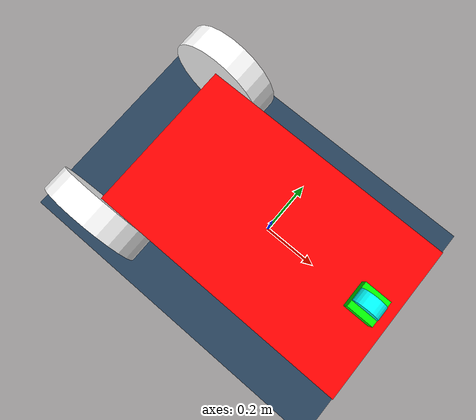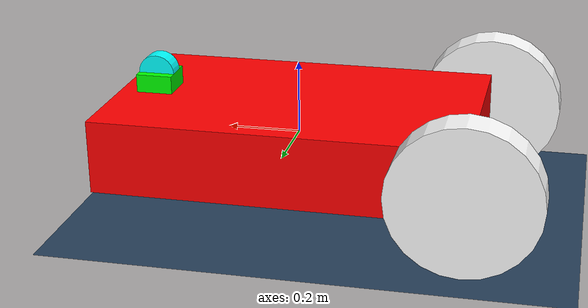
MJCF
<mujoco model="ddrive">
  <compiler angle="radian" meshdir="../meshes/"/>

  <asset>
    <material name="grid" texture="grid" texrepeat="1 1" texuniform="true" reflectance=".2"/>
    <texture name="grid" type="2d" builtin="checker" width="512" height="512" rgb1=".1 .2 .3" rgb2=".2 .3 .4"/>
  </asset>

  <default>
    <joint damping=".003" actuatorfrcrange="-1 1"/>
  </default>

  <worldbody>
    <geom type="plane" size="3 3 .01" pos="0.0 0.0 -0.2" material="grid"/>
    <body name="car" pos="0.0 0.0 0.0">
      <freejoint/>
      <geom size="0.5 0.3 0.1" type="box" rgba="1 0 0 1"/>
      <geom size="0.05 0.05 0.15" pos="0.4 0 0" type="box" rgba="0 1 0 1"/>
      <body name="blWheel" pos="-0.5 0.35 0" quat="0.707107 0.707107 0 0">
        <joint name="base-blWheel" pos="0 0 0" axis="0 0 -1"/>
        <geom size="0.2 0.05" type="cylinder" rgba="1 1 1 1"/>
      </body>
      <body name="brWheel" pos="-0.5 -0.35 0" quat="0.707107 -0.707107 0 0">
        <joint name="base-brWheel" pos="0 0 0" axis="0 0 1"/>
        <geom size="0.2 0.05" type="cylinder" rgba="1 1 1 1"/>
      </body>
      <body name="top_caster" pos="0.4 0 0.15" quat="0.707107 -0.707107 0 0">
        <joint name="block-top_caster" pos="0 0 0" axis="0 0 -1"/>
        <geom size="0.05 0.025" type="cylinder" rgba="0 1 1 1"/>
      </body>
      <body name="bot_caster" pos="0.4 0 -0.15" quat="0.707107 -0.707107 0 0">
        <joint name="block-bot_caster" pos="0 0 0" axis="0 0 1"/>
        <geom size="0.05 0.025" type="cylinder" rgba="0 1 1 1"/>
      </body>
    </body>
  </worldbody>

  <tendon>
    <fixed name="forward">
      <joint joint="base-blWheel" coef="2000"/>
      <joint joint="base-brWheel" coef="2000"/>
      <joint joint="block-bot_caster" coef="200"/>
    </fixed>
  </tendon>

  <actuator>
    <motor name="forward" tendon="forward" ctrlrange="-1 1"/>
  </actuator>

  <sensor>
    <jointactuatorfrc name="right" joint="base-brWheel"/>
    <jointactuatorfrc name="left" joint="base-blWheel"/>
  </sensor>
</mujoco>
